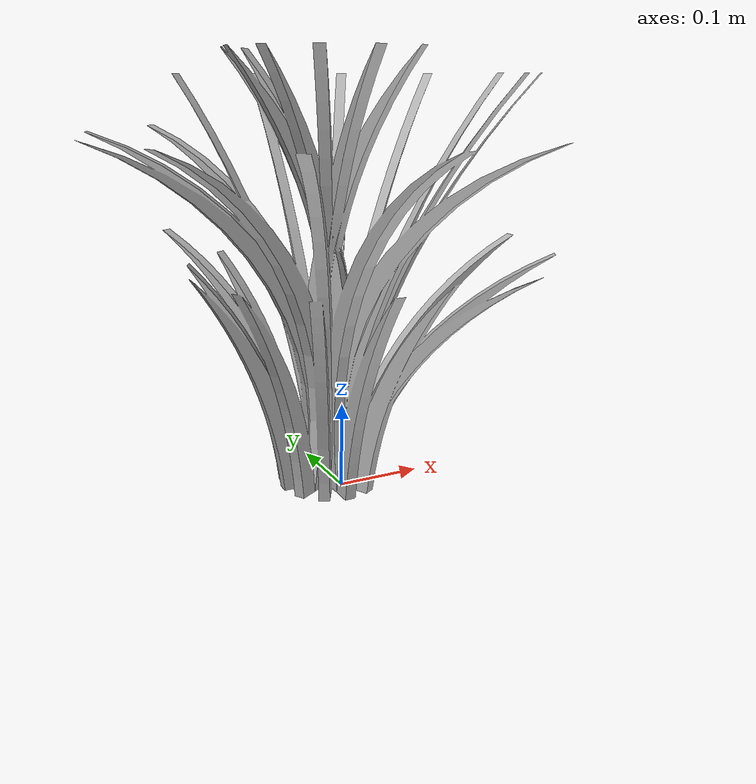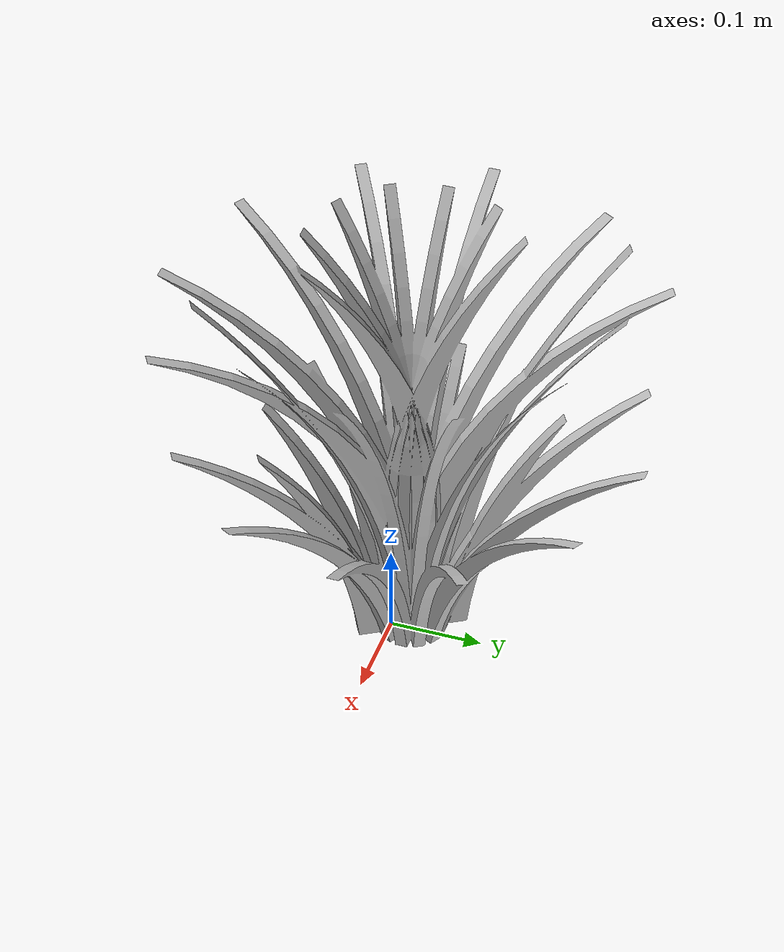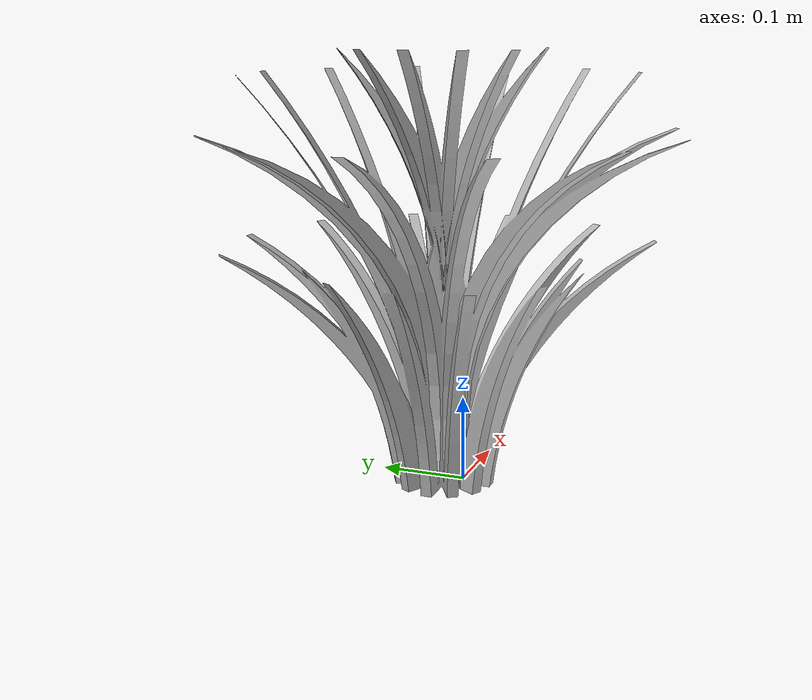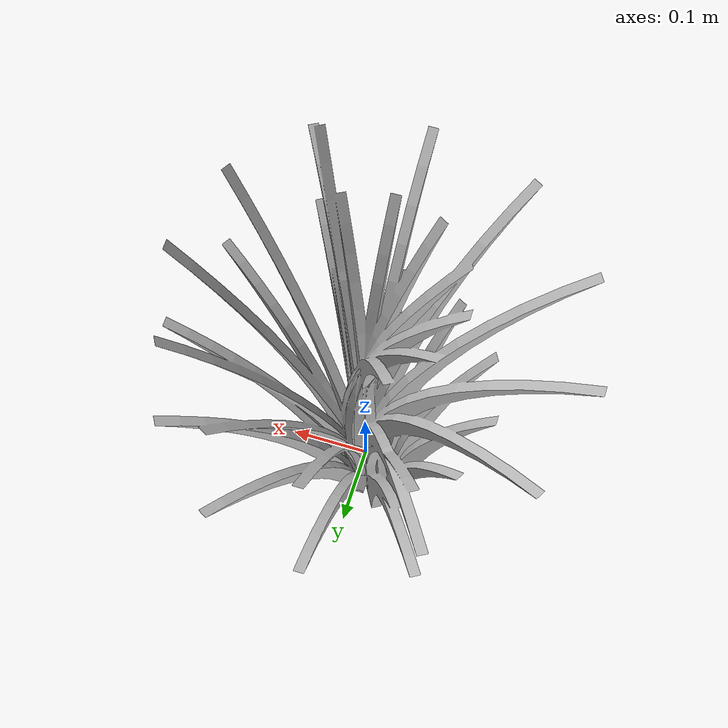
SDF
<?xml version="1.0" ?>
<sdf version="1.5">
  <model name="bush">
    <static>true</static>
    <link name="link">
      <pose>0 0 0 0 0 0</pose>
        <collision name="collision">
        <geometry>
          <box>
            <size>0.5 0.5 1</size>
          </box>
        </geometry>
      </collision>
      <visual name="visual">
        <cast_shadows>true</cast_shadows>
        <geometry>
          <mesh>
              <uri>model://bush_type1/meshes/model.stl</uri>
          </mesh>
        </geometry>
        <material>
          <script>
            <uri>model://bush_type1/materials/scripts</uri>
            <uri>model://bush_type1/materials/textures</uri>
            <name>bush_type1/Diffuse</name>
          </script>
        </material>
      </visual>
    </link>
  </model>
</sdf>
